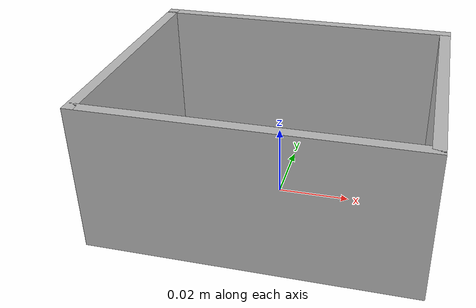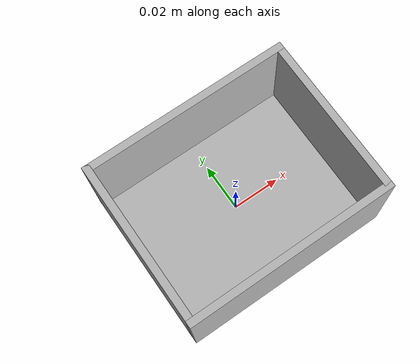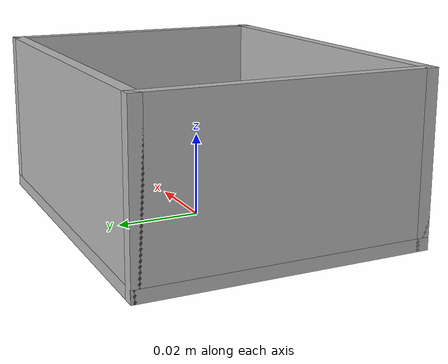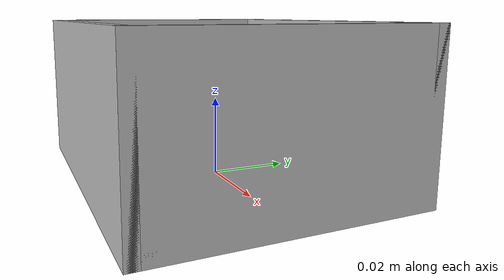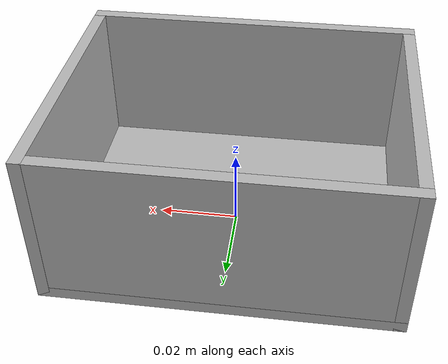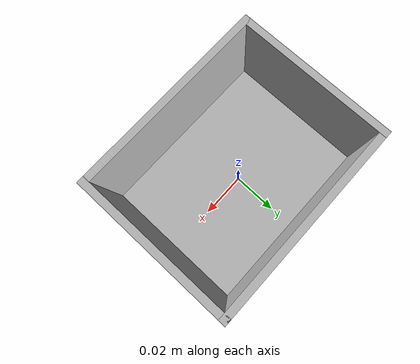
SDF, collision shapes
<?xml version="1.0" encoding="UTF-8"?>
<sdf version="1.9">
  <model name="Tray">
    <link name="base_link">
      <inertial>
        <mass>0.063</mass>
        <inertia>
          <ixx>0.000050028</ixx>
          <ixy>0</ixy>
          <ixz>0</ixz>
          <iyy>0.000068415</iyy>
          <iyz>0</iyz>
          <izz>0.000097543</izz>
        </inertia>
      </inertial>
      <visual name="visual_1">
        <geometry>
          <mesh>
            <uri>tray.glb</uri>
          </mesh>
        </geometry>
      </visual>
      <collision name="box_collider_box">
        <pose>0.0 -0.033847 0.02 0.0 0.0 0.0</pose>
        <geometry>
          <box>
            <size>0.086 0.003 0.04</size>
          </box>
        </geometry>
      </collision>
      <collision name="box_collider_box.001">
        <pose>0.0415 -0.001173 0.02 0.0 0.0 0.0</pose>
        <geometry>
          <box>
            <size>0.003 0.068347 0.04</size>
          </box>
        </geometry>
      </collision>
      <collision name="box_collider_box.002">
        <pose>0.0 -0.001173 0.0015 0.0 0.0 0.0</pose>
        <geometry>
          <box>
            <size>0.086 0.068347 0.003</size>
          </box>
        </geometry>
      </collision>
      <collision name="box_collider_box.003">
        <pose>0.0 0.0315 0.02 0.0 0.0 0.0</pose>
        <geometry>
          <box>
            <size>0.086 0.003 0.04</size>
          </box>
        </geometry>
      </collision>
      <collision name="box_collider_box.004">
        <pose>-0.0415 -0.001173 0.02 0.0 0.0 0.0</pose>
        <geometry>
          <box>
            <size>0.003 0.068347 0.04</size>
          </box>
        </geometry>
      </collision>
    </link>
  </model>
</sdf>
